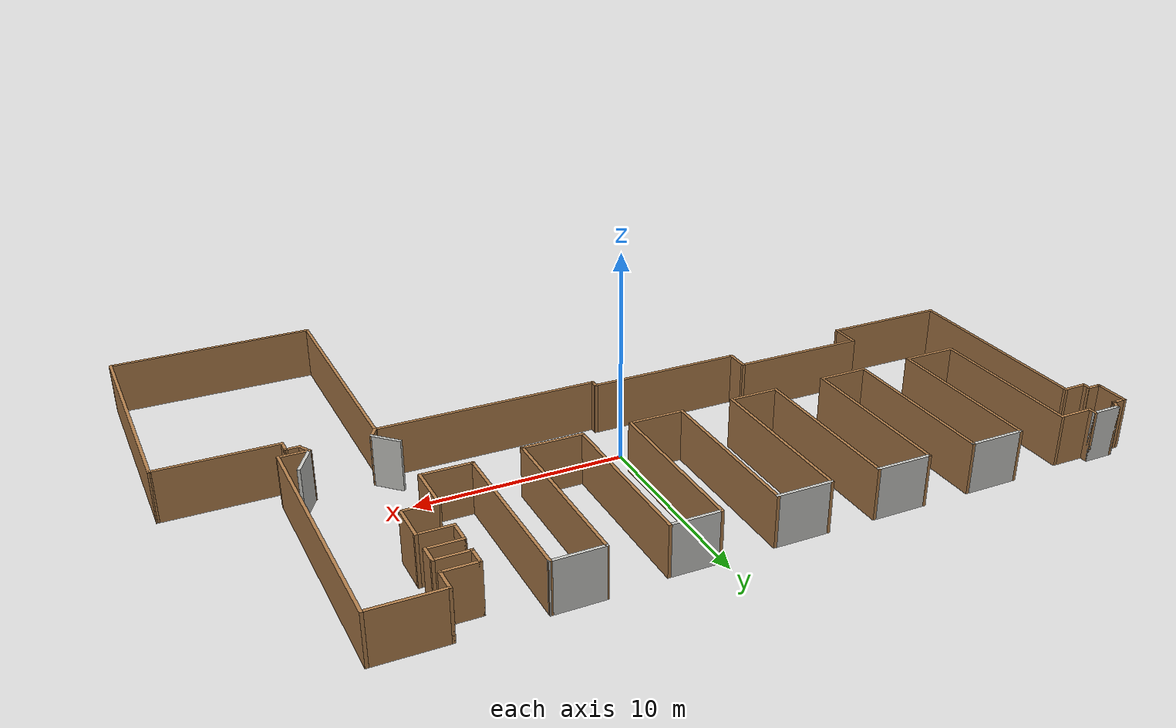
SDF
<?xml version='1.0'?>
<sdf version='1.6'>
  <model name='ecst_v2'>
    <pose frame=''>-0.546253 -2.48156 0 0 -0 0</pose>
    <link name='Wall_100'>
      <collision name='Wall_100_Collision'>
        <geometry>
          <box>
            <size>1 0.15 2.5</size>
          </box>
        </geometry>
        <pose frame=''>0 0 1.25 0 -0 0</pose>
      </collision>
      <visual name='Wall_100_Visual'>
        <pose frame=''>0 0 1.25 0 -0 0</pose>
        <geometry>
          <box>
            <size>1 0.15 2.5</size>
          </box>
        </geometry>
        <material>
          <script>
            <uri>file://media/materials/scripts/gazebo.material</uri>
            <name>Gazebo/Wood</name>
          </script>
          <ambient>1 1 1 1</ambient>
        </material>
        <meta>
          <layer>0</layer>
        </meta>
      </visual>
      <pose frame=''>10.625 10.6345 0 0 -0 1.5708</pose>
    </link>
    <link name='Wall_101'>
      <collision name='Wall_101_Collision'>
        <geometry>
          <box>
            <size>1.75 0.15 2.5</size>
          </box>
        </geometry>
        <pose frame=''>0 0 1.25 0 -0 0</pose>
      </collision>
      <visual name='Wall_101_Visual'>
        <pose frame=''>0 0 1.25 0 -0 0</pose>
        <geometry>
          <box>
            <size>1.75 0.15 2.5</size>
          </box>
        </geometry>
        <material>
          <script>
            <uri>file://media/materials/scripts/gazebo.material</uri>
            <name>Gazebo/Wood</name>
          </script>
          <ambient>1 1 1 1</ambient>
        </material>
        <meta>
          <layer>0</layer>
        </meta>
      </visual>
      <pose frame=''>11.425 11.0595 0 0 -0 0</pose>
    </link>
    <link name='Wall_102'>
      <collision name='Wall_102_Collision'>
        <geometry>
          <box>
            <size>1.25 0.15 2.5</size>
          </box>
        </geometry>
        <pose frame=''>0 0 1.25 0 -0 0</pose>
      </collision>
      <visual name='Wall_102_Visual'>
        <pose frame=''>0 0 1.25 0 -0 0</pose>
        <geometry>
          <box>
            <size>1.25 0.15 2.5</size>
          </box>
        </geometry>
        <material>
          <script>
            <uri>file://media/materials/scripts/gazebo.material</uri>
            <name>Gazebo/Wood</name>
          </script>
          <ambient>1 1 1 1</ambient>
        </material>
        <meta>
          <layer>0</layer>
        </meta>
      </visual>
      <pose frame=''>12.225 11.6095 0 0 -0 1.5708</pose>
    </link>
    <link name='Wall_103'>
      <collision name='Wall_103_Collision'>
        <geometry>
          <box>
            <size>3.5 0.15 2.5</size>
          </box>
        </geometry>
        <pose frame=''>0 0 1.25 0 -0 0</pose>
      </collision>
      <visual name='Wall_103_Visual'>
        <pose frame=''>0 0 1.25 0 -0 0</pose>
        <geometry>
          <box>
            <size>3.5 0.15 2.5</size>
          </box>
        </geometry>
        <material>
          <script>
            <uri>file://media/materials/scripts/gazebo.material</uri>
            <name>Gazebo/Wood</name>
          </script>
          <ambient>1 1 1 1</ambient>
        </material>
        <meta>
          <layer>0</layer>
        </meta>
      </visual>
      <pose frame=''>13.9 12.1595 0 0 -0 0</pose>
    </link>
    <link name='Wall_104'>
      <collision name='Wall_104_Collision'>
        <geometry>
          <box>
            <size>12.25 0.15 2.5</size>
          </box>
        </geometry>
        <pose frame=''>0 0 1.25 0 -0 0</pose>
      </collision>
      <visual name='Wall_104_Visual'>
        <pose frame=''>0 0 1.25 0 -0 0</pose>
        <geometry>
          <box>
            <size>12.25 0.15 2.5</size>
          </box>
        </geometry>
        <material>
          <script>
            <uri>file://media/materials/scripts/gazebo.material</uri>
            <name>Gazebo/Wood</name>
          </script>
          <ambient>1 1 1 1</ambient>
        </material>
        <meta>
          <layer>0</layer>
        </meta>
      </visual>
      <pose frame=''>15.575 6.10955 0 0 -0 -1.5708</pose>
    </link>
    <link name='Wall_105'>
      <collision name='Wall_105_Collision'>
        <geometry>
          <box>
            <size>1.5 0.15 2.5</size>
          </box>
        </geometry>
        <pose frame=''>0 0 1.25 0 -0 0</pose>
      </collision>
      <visual name='Wall_105_Visual'>
        <pose frame=''>0 0 1.25 0 -0 0</pose>
        <geometry>
          <box>
            <size>1.5 0.15 2.5</size>
          </box>
        </geometry>
        <material>
          <script>
            <uri>file://media/materials/scripts/gazebo.material</uri>
            <name>Gazebo/Wood</name>
          </script>
          <ambient>1 1 1 1</ambient>
        </material>
        <meta>
          <layer>0</layer>
        </meta>
      </visual>
      <pose frame=''>14.9 0.059548 0 0 -0 3.14159</pose>
    </link>
    <link name='Wall_106'>
      <collision name='Wall_106_Collision'>
        <geometry>
          <box>
            <size>1.75 0.15 2.5</size>
          </box>
        </geometry>
        <pose frame=''>0 0 1.25 0 -0 0</pose>
      </collision>
      <visual name='Wall_106_Visual'>
        <pose frame=''>0 0 1.25 0 -0 0</pose>
        <geometry>
          <box>
            <size>1.75 0.15 2.5</size>
          </box>
        </geometry>
        <material>
          <script>
            <uri>file://media/materials/scripts/gazebo.material</uri>
            <name>Gazebo/CeilingTiled</name>
          </script>
          <ambient>1 1 1 1</ambient>
        </material>
        <meta>
          <layer>0</layer>
        </meta>
      </visual>
      <pose frame=''>14.625 0.752368 0 0 -0 1.0472</pose>
    </link>
    <link name='Wall_108'>
      <collision name='Wall_108_Collision'>
        <geometry>
          <box>
            <size>0.75 0.15 2.5</size>
          </box>
        </geometry>
        <pose frame=''>0 0 1.25 0 -0 0</pose>
      </collision>
      <visual name='Wall_108_Visual'>
        <pose frame=''>0 0 1.25 0 -0 0</pose>
        <geometry>
          <box>
            <size>0.75 0.15 2.5</size>
          </box>
        </geometry>
        <material>
          <script>
            <uri>file://media/materials/scripts/gazebo.material</uri>
            <name>Gazebo/Wood</name>
          </script>
          <ambient>1 1 1 1</ambient>
        </material>
        <meta>
          <layer>0</layer>
        </meta>
      </visual>
      <pose frame=''>14.375 -0.200259 0 0 -0 -1.0472</pose>
    </link>
    <link name='Wall_109'>
      <collision name='Wall_109_Collision'>
        <geometry>
          <box>
            <size>0.75 0.15 2.5</size>
          </box>
        </geometry>
        <pose frame=''>0 0 1.25 0 -0 0</pose>
      </collision>
      <visual name='Wall_109_Visual'>
        <pose frame=''>0 0 1.25 0 -0 0</pose>
        <geometry>
          <box>
            <size>0.75 0.15 2.5</size>
          </box>
        </geometry>
        <material>
          <script>
            <uri>file://media/materials/scripts/gazebo.material</uri>
            <name>Gazebo/Wood</name>
          </script>
          <ambient>1 1 1 1</ambient>
        </material>
        <meta>
          <layer>0</layer>
        </meta>
      </visual>
      <pose frame=''>14.825 -0.460067 0 0 -0 0</pose>
    </link>
    <link name='Wall_110'>
      <collision name='Wall_110_Collision'>
        <geometry>
          <box>
            <size>0.75 0.15 2.5</size>
          </box>
        </geometry>
        <pose frame=''>0 0 1.25 0 -0 0</pose>
      </collision>
      <visual name='Wall_110_Visual'>
        <pose frame=''>0 0 1.25 0 -0 0</pose>
        <geometry>
          <box>
            <size>0.75 0.15 2.5</size>
          </box>
        </geometry>
        <material>
          <script>
            <uri>file://media/materials/scripts/gazebo.material</uri>
            <name>Gazebo/Wood</name>
          </script>
          <ambient>1 1 1 1</ambient>
        </material>
        <meta>
          <layer>0</layer>
        </meta>
      </visual>
      <pose frame=''>15.125 -0.760067 0 0 -0 -1.5708</pose>
    </link>
    <link name='Wall_111'>
      <collision name='Wall_111_Collision'>
        <geometry>
          <box>
            <size>5.75 0.15 2.5</size>
          </box>
        </geometry>
        <pose frame=''>0 0 1.25 0 -0 0</pose>
      </collision>
      <visual name='Wall_111_Visual'>
        <pose frame=''>0 0 1.25 0 -0 0</pose>
        <geometry>
          <box>
            <size>5.75 0.15 2.5</size>
          </box>
        </geometry>
        <material>
          <script>
            <uri>file://media/materials/scripts/gazebo.material</uri>
            <name>Gazebo/Wood</name>
          </script>
          <ambient>1 1 1 1</ambient>
        </material>
        <meta>
          <layer>0</layer>
        </meta>
      </visual>
      <pose frame=''>17.925 -1.06007 0 0 -0 0</pose>
    </link>
    <link name='Wall_112'>
      <collision name='Wall_112_Collision'>
        <geometry>
          <box>
            <size>11.25 0.15 2.5</size>
          </box>
        </geometry>
        <pose frame=''>0 0 1.25 0 -0 0</pose>
      </collision>
      <visual name='Wall_112_Visual'>
        <pose frame=''>0 0 1.25 0 -0 0</pose>
        <geometry>
          <box>
            <size>11.25 0.15 2.5</size>
          </box>
        </geometry>
        <material>
          <script>
            <uri>file://media/materials/scripts/gazebo.material</uri>
            <name>Gazebo/Wood</name>
          </script>
          <ambient>1 1 1 1</ambient>
        </material>
        <meta>
          <layer>0</layer>
        </meta>
      </visual>
      <pose frame=''>20.725 -6.61007 0 0 -0 -1.5708</pose>
    </link>
    <link name='Wall_113'>
      <collision name='Wall_113_Collision'>
        <geometry>
          <box>
            <size>9.75 0.15 2.5</size>
          </box>
        </geometry>
        <pose frame=''>0 0 1.25 0 -0 0</pose>
      </collision>
      <visual name='Wall_113_Visual'>
        <pose frame=''>0 0 1.25 0 -0 0</pose>
        <geometry>
          <box>
            <size>9.75 0.15 2.5</size>
          </box>
        </geometry>
        <material>
          <script>
            <uri>file://media/materials/scripts/gazebo.material</uri>
            <name>Gazebo/Wood</name>
          </script>
          <ambient>1 1 1 1</ambient>
        </material>
        <meta>
          <layer>0</layer>
        </meta>
      </visual>
      <pose frame=''>15.925 -12.1601 0 0 -0 3.14159</pose>
    </link>
    <link name='Wall_114'>
      <collision name='Wall_114_Collision'>
        <geometry>
          <box>
            <size>11.75 0.15 2.5</size>
          </box>
        </geometry>
        <pose frame=''>0 0 1.25 0 -0 0</pose>
      </collision>
      <visual name='Wall_114_Visual'>
        <pose frame=''>0 0 1.25 0 -0 0</pose>
        <geometry>
          <box>
            <size>11.75 0.15 2.5</size>
          </box>
        </geometry>
        <material>
          <script>
            <uri>file://media/materials/scripts/gazebo.material</uri>
            <name>Gazebo/Wood</name>
          </script>
          <ambient>1 1 1 1</ambient>
        </material>
        <meta>
          <layer>0</layer>
        </meta>
      </visual>
      <pose frame=''>11.125 -6.36007 0 0 -0 1.5708</pose>
    </link>
    <link name='Wall_115'>
      <collision name='Wall_115_Collision'>
        <geometry>
          <box>
            <size>10.75 0.15 2.5</size>
          </box>
        </geometry>
        <pose frame=''>0 0 1.25 0 -0 0</pose>
      </collision>
      <visual name='Wall_115_Visual'>
        <pose frame=''>0 0 1.25 0 -0 0</pose>
        <geometry>
          <box>
            <size>10.75 0.15 2.5</size>
          </box>
        </geometry>
        <material>
          <script>
            <uri>file://media/materials/scripts/gazebo.material</uri>
            <name>Gazebo/Wood</name>
          </script>
          <ambient>1 1 1 1</ambient>
        </material>
        <meta>
          <layer>0</layer>
        </meta>
      </visual>
      <pose frame=''>5.825 -0.560067 0 0 -0 3.14159</pose>
    </link>
    <link name='Wall_116'>
      <collision name='Wall_116_Collision'>
        <geometry>
          <box>
            <size>0.5 0.15 2.5</size>
          </box>
        </geometry>
        <pose frame=''>0 0 1.25 0 -0 0</pose>
      </collision>
      <visual name='Wall_116_Visual'>
        <pose frame=''>0 0 1.25 0 -0 0</pose>
        <geometry>
          <box>
            <size>0.5 0.15 2.5</size>
          </box>
        </geometry>
        <material>
          <script>
            <uri>file://media/materials/scripts/gazebo.material</uri>
            <name>Gazebo/Wood</name>
          </script>
          <ambient>1 1 1 1</ambient>
        </material>
        <meta>
          <layer>0</layer>
        </meta>
      </visual>
      <pose frame=''>0.525 -0.385067 0 0 -0 1.5708</pose>
    </link>
    <link name='Wall_117'>
      <collision name='Wall_117_Collision'>
        <geometry>
          <box>
            <size>7.5 0.15 2.5</size>
          </box>
        </geometry>
        <pose frame=''>0 0 1.25 0 -0 0</pose>
      </collision>
      <visual name='Wall_117_Visual'>
        <pose frame=''>0 0 1.25 0 -0 0</pose>
        <geometry>
          <box>
            <size>7.5 0.15 2.5</size>
          </box>
        </geometry>
        <material>
          <script>
            <uri>file://media/materials/scripts/gazebo.material</uri>
            <name>Gazebo/Wood</name>
          </script>
          <ambient>1 1 1 1</ambient>
        </material>
        <meta>
          <layer>0</layer>
        </meta>
      </visual>
      <pose frame=''>-3.15 -0.210067 0 0 -0 3.14159</pose>
    </link>
    <link name='Wall_118'>
      <collision name='Wall_118_Collision'>
        <geometry>
          <box>
            <size>1.25 0.15 2.5</size>
          </box>
        </geometry>
        <pose frame=''>0 0 1.25 0 -0 0</pose>
      </collision>
      <visual name='Wall_118_Visual'>
        <pose frame=''>0 0 1.25 0 -0 0</pose>
        <geometry>
          <box>
            <size>1.25 0.15 2.5</size>
          </box>
        </geometry>
        <material>
          <script>
            <uri>file://media/materials/scripts/gazebo.material</uri>
            <name>Gazebo/Wood</name>
          </script>
          <ambient>1 1 1 1</ambient>
        </material>
        <meta>
          <layer>0</layer>
        </meta>
      </visual>
      <pose frame=''>-6.825 0.339933 0 0 -0 1.5708</pose>
    </link>
    <link name='Wall_119'>
      <collision name='Wall_119_Collision'>
        <geometry>
          <box>
            <size>6.5 0.15 2.5</size>
          </box>
        </geometry>
        <pose frame=''>0 0 1.25 0 -0 0</pose>
      </collision>
      <visual name='Wall_119_Visual'>
        <pose frame=''>0 0 1.25 0 -0 0</pose>
        <geometry>
          <box>
            <size>6.5 0.15 2.5</size>
          </box>
        </geometry>
        <material>
          <script>
            <uri>file://media/materials/scripts/gazebo.material</uri>
            <name>Gazebo/Wood</name>
          </script>
          <ambient>1 1 1 1</ambient>
        </material>
        <meta>
          <layer>0</layer>
        </meta>
      </visual>
      <pose frame=''>-10 0.889933 0 0 -0 3.14159</pose>
    </link>
    <link name='Wall_120'>
      <collision name='Wall_120_Collision'>
        <geometry>
          <box>
            <size>1.5 0.15 2.5</size>
          </box>
        </geometry>
        <pose frame=''>0 0 1.25 0 -0 0</pose>
      </collision>
      <visual name='Wall_120_Visual'>
        <pose frame=''>0 0 1.25 0 -0 0</pose>
        <geometry>
          <box>
            <size>1.5 0.15 2.5</size>
          </box>
        </geometry>
        <material>
          <script>
            <uri>file://media/materials/scripts/gazebo.material</uri>
            <name>Gazebo/Wood</name>
          </script>
          <ambient>1 1 1 1</ambient>
        </material>
        <meta>
          <layer>0</layer>
        </meta>
      </visual>
      <pose frame=''>-13.175 0.214933 0 0 -0 -1.5708</pose>
    </link>
    <link name='Wall_121'>
      <collision name='Wall_121_Collision'>
        <geometry>
          <box>
            <size>6 0.15 2.5</size>
          </box>
        </geometry>
        <pose frame=''>0 0 1.25 0 -0 0</pose>
      </collision>
      <visual name='Wall_121_Visual'>
        <pose frame=''>0 0 1.25 0 -0 0</pose>
        <geometry>
          <box>
            <size>6 0.15 2.5</size>
          </box>
        </geometry>
        <material>
          <script>
            <uri>file://media/materials/scripts/gazebo.material</uri>
            <name>Gazebo/Wood</name>
          </script>
          <ambient>1 1 1 1</ambient>
        </material>
        <meta>
          <layer>0</layer>
        </meta>
      </visual>
      <pose frame=''>-16.1 -0.460067 0 0 -0 3.14159</pose>
    </link>
    <link name='Wall_122'>
      <collision name='Wall_122_Collision'>
        <geometry>
          <box>
            <size>10.25 0.15 2.5</size>
          </box>
        </geometry>
        <pose frame=''>0 0 1.25 0 -0 0</pose>
      </collision>
      <visual name='Wall_122_Visual'>
        <pose frame=''>0 0 1.25 0 -0 0</pose>
        <geometry>
          <box>
            <size>10.25 0.15 2.5</size>
          </box>
        </geometry>
        <material>
          <script>
            <uri>file://media/materials/scripts/gazebo.material</uri>
            <name>Gazebo/Wood</name>
          </script>
          <ambient>1 1 1 1</ambient>
        </material>
        <meta>
          <layer>0</layer>
        </meta>
      </visual>
      <pose frame=''>-19.025 4.58993 0 0 -0 1.5708</pose>
    </link>
    <link name='Wall_123'>
      <collision name='Wall_123_Collision'>
        <geometry>
          <box>
            <size>1.25 0.15 2.5</size>
          </box>
        </geometry>
        <pose frame=''>0 0 1.25 0 -0 0</pose>
      </collision>
      <visual name='Wall_123_Visual'>
        <pose frame=''>0 0 1.25 0 -0 0</pose>
        <geometry>
          <box>
            <size>1.25 0.15 2.5</size>
          </box>
        </geometry>
        <material>
          <script>
            <uri>file://media/materials/scripts/gazebo.material</uri>
            <name>Gazebo/Wood</name>
          </script>
          <ambient>1 1 1 1</ambient>
        </material>
        <meta>
          <layer>0</layer>
        </meta>
      </visual>
      <pose frame=''>-19.575 9.63993 0 0 -0 3.14159</pose>
    </link>
    <link name='Wall_124'>
      <collision name='Wall_124_Collision'>
        <geometry>
          <box>
            <size>0.5 0.15 2.5</size>
          </box>
        </geometry>
        <pose frame=''>0 0 1.25 0 -0 0</pose>
      </collision>
      <visual name='Wall_124_Visual'>
        <pose frame=''>0 0 1.25 0 -0 0</pose>
        <geometry>
          <box>
            <size>0.5 0.15 2.5</size>
          </box>
        </geometry>
        <material>
          <script>
            <uri>file://media/materials/scripts/gazebo.material</uri>
            <name>Gazebo/Wood</name>
          </script>
          <ambient>1 1 1 1</ambient>
        </material>
        <meta>
          <layer>0</layer>
        </meta>
      </visual>
      <pose frame=''>-20.125 9.81493 0 0 -0 1.5708</pose>
    </link>
    <link name='Wall_125'>
      <collision name='Wall_125_Collision'>
        <geometry>
          <box>
            <size>0.75 0.15 2.5</size>
          </box>
        </geometry>
        <pose frame=''>0 0 1.25 0 -0 0</pose>
      </collision>
      <visual name='Wall_125_Visual'>
        <pose frame=''>0 0 1.25 0 -0 0</pose>
        <geometry>
          <box>
            <size>0.75 0.15 2.5</size>
          </box>
        </geometry>
        <material>
          <script>
            <uri>file://media/materials/scripts/gazebo.material</uri>
            <name>Gazebo/Wood</name>
          </script>
          <ambient>1 1 1 1</ambient>
        </material>
        <meta>
          <layer>0</layer>
        </meta>
      </visual>
      <pose frame=''>-20.425 9.98993 0 0 -0 3.14159</pose>
    </link>
    <link name='Wall_126'>
      <collision name='Wall_126_Collision'>
        <geometry>
          <box>
            <size>1.75 0.15 2.5</size>
          </box>
        </geometry>
        <pose frame=''>0 0 1.25 0 -0 0</pose>
      </collision>
      <visual name='Wall_126_Visual'>
        <pose frame=''>0 0 1.25 0 -0 0</pose>
        <geometry>
          <box>
            <size>1.75 0.15 2.5</size>
          </box>
        </geometry>
        <material>
          <script>
            <uri>file://media/materials/scripts/gazebo.material</uri>
            <name>Gazebo/Wood</name>
          </script>
          <ambient>1 1 1 1</ambient>
        </material>
        <meta>
          <layer>0</layer>
        </meta>
      </visual>
      <pose frame=''>-20.725 10.7899 0 0 -0 1.5708</pose>
    </link>
    <link name='Wall_127'>
      <collision name='Wall_127_Collision'>
        <geometry>
          <box>
            <size>0.75 0.15 2.5</size>
          </box>
        </geometry>
        <pose frame=''>0 0 1.25 0 -0 0</pose>
      </collision>
      <visual name='Wall_127_Visual'>
        <pose frame=''>0 0 1.25 0 -0 0</pose>
        <geometry>
          <box>
            <size>0.75 0.15 2.5</size>
          </box>
        </geometry>
        <material>
          <script>
            <uri>file://media/materials/scripts/gazebo.material</uri>
            <name>Gazebo/Wood</name>
          </script>
          <ambient>1 1 1 1</ambient>
        </material>
        <meta>
          <layer>0</layer>
        </meta>
      </visual>
      <pose frame=''>-20.425 11.5899 0 0 -0 0</pose>
    </link>
    <link name='Wall_128'>
      <collision name='Wall_128_Collision'>
        <geometry>
          <box>
            <size>0.5 0.15 2.5</size>
          </box>
        </geometry>
        <pose frame=''>0 0 1.25 0 -0 0</pose>
      </collision>
      <visual name='Wall_128_Visual'>
        <pose frame=''>0 0 1.25 0 -0 0</pose>
        <geometry>
          <box>
            <size>0.5 0.15 2.5</size>
          </box>
        </geometry>
        <material>
          <script>
            <uri>file://media/materials/scripts/gazebo.material</uri>
            <name>Gazebo/Wood</name>
          </script>
          <ambient>1 1 1 1</ambient>
        </material>
        <meta>
          <layer>0</layer>
        </meta>
      </visual>
      <pose frame=''>-20.0375 11.7415 0 0 -0 1.0472</pose>
    </link>
    <link name='Wall_129'>
      <collision name='Wall_129_Collision'>
        <geometry>
          <box>
            <size>0.25 0.15 2.5</size>
          </box>
        </geometry>
        <pose frame=''>0 0 1.25 0 -0 0</pose>
      </collision>
      <visual name='Wall_129_Visual'>
        <pose frame=''>0 0 1.25 0 -0 0</pose>
        <geometry>
          <box>
            <size>0.25 0.15 2.5</size>
          </box>
        </geometry>
        <material>
          <script>
            <uri>file://media/materials/scripts/gazebo.material</uri>
            <name>Gazebo/Wood</name>
          </script>
          <ambient>1 1 1 1</ambient>
        </material>
        <meta>
          <layer>0</layer>
        </meta>
      </visual>
      <pose frame=''>-19.95 11.943 0 0 -0 1.5708</pose>
    </link>
    <link name='Wall_130'>
      <collision name='Wall_130_Collision'>
        <geometry>
          <box>
            <size>1.5 0.15 2.5</size>
          </box>
        </geometry>
        <pose frame=''>0 0 1.25 0 -0 0</pose>
      </collision>
      <visual name='Wall_130_Visual'>
        <pose frame=''>0 0 1.25 0 -0 0</pose>
        <geometry>
          <box>
            <size>1.5 0.15 2.5</size>
          </box>
        </geometry>
        <material>
          <script>
            <uri>file://media/materials/scripts/gazebo.material</uri>
            <name>Gazebo/CeilingTiled</name>
          </script>
          <ambient>1 1 1 1</ambient>
        </material>
        <meta>
          <layer>0</layer>
        </meta>
      </visual>
      <pose frame=''>-19.275 11.993 0 0 -0 0</pose>
    </link>
    <link name='Wall_131'>
      <collision name='Wall_131_Collision'>
        <geometry>
          <box>
            <size>0.5 0.15 2.5</size>
          </box>
        </geometry>
        <pose frame=''>0 0 1.25 0 -0 0</pose>
      </collision>
      <visual name='Wall_131_Visual'>
        <pose frame=''>0 0 1.25 0 -0 0</pose>
        <geometry>
          <box>
            <size>0.5 0.15 2.5</size>
          </box>
        </geometry>
        <material>
          <script>
            <uri>file://media/materials/scripts/gazebo.material</uri>
            <name>Gazebo/Wood</name>
          </script>
          <ambient>1 1 1 1</ambient>
        </material>
        <meta>
          <layer>0</layer>
        </meta>
      </visual>
      <pose frame=''>-18.6 11.818 0 0 -0 -1.5708</pose>
    </link>
    <link name='Wall_132'>
      <collision name='Wall_132_Collision'>
        <geometry>
          <box>
            <size>1.75 0.15 2.5</size>
          </box>
        </geometry>
        <pose frame=''>0 0 1.25 0 -0 0</pose>
      </collision>
      <visual name='Wall_132_Visual'>
        <pose frame=''>0 0 1.25 0 -0 0</pose>
        <geometry>
          <box>
            <size>1.75 0.15 2.5</size>
          </box>
        </geometry>
        <material>
          <script>
            <uri>file://media/materials/scripts/gazebo.material</uri>
            <name>Gazebo/Wood</name>
          </script>
          <ambient>1 1 1 1</ambient>
        </material>
        <meta>
          <layer>0</layer>
        </meta>
      </visual>
      <pose frame=''>-17.8 11.643 0 0 -0 0</pose>
    </link>
    <link name='Wall_133'>
      <collision name='Wall_133_Collision'>
        <geometry>
          <box>
            <size>8 0.15 2.5</size>
          </box>
        </geometry>
        <pose frame=''>0 0 1.25 0 -0 0</pose>
      </collision>
      <visual name='Wall_133_Visual'>
        <pose frame=''>0 0 1.25 0 -0 0</pose>
        <geometry>
          <box>
            <size>8 0.15 2.5</size>
          </box>
        </geometry>
        <material>
          <script>
            <uri>file://media/materials/scripts/gazebo.material</uri>
            <name>Gazebo/Wood</name>
          </script>
          <ambient>1 1 1 1</ambient>
        </material>
        <meta>
          <layer>0</layer>
        </meta>
      </visual>
      <pose frame=''>-17 7.71804 0 0 -0 -1.5708</pose>
    </link>
    <link name='Wall_134'>
      <collision name='Wall_134_Collision'>
        <geometry>
          <box>
            <size>2.75 0.15 2.5</size>
          </box>
        </geometry>
        <pose frame=''>0 0 1.25 0 -0 0</pose>
      </collision>
      <visual name='Wall_134_Visual'>
        <pose frame=''>0 0 1.25 0 -0 0</pose>
        <geometry>
          <box>
            <size>2.75 0.15 2.5</size>
          </box>
        </geometry>
        <material>
          <script>
            <uri>file://media/materials/scripts/gazebo.material</uri>
            <name>Gazebo/Wood</name>
          </script>
          <ambient>1 1 1 1</ambient>
        </material>
        <meta>
          <layer>0</layer>
        </meta>
      </visual>
      <pose frame=''>-15.7 3.79304 0 0 -0 0</pose>
    </link>
    <link name='Wall_135'>
      <collision name='Wall_135_Collision'>
        <geometry>
          <box>
            <size>8.25 0.15 2.5</size>
          </box>
        </geometry>
        <pose frame=''>0 0 1.25 0 -0 0</pose>
      </collision>
      <visual name='Wall_135_Visual'>
        <pose frame=''>0 0 1.25 0 -0 0</pose>
        <geometry>
          <box>
            <size>8.25 0.15 2.5</size>
          </box>
        </geometry>
        <material>
          <script>
            <uri>file://media/materials/scripts/gazebo.material</uri>
            <name>Gazebo/Wood</name>
          </script>
          <ambient>1 1 1 1</ambient>
        </material>
        <meta>
          <layer>0</layer>
        </meta>
      </visual>
      <pose frame=''>-14.4 7.84304 0 0 -0 1.5708</pose>
    </link>
    <link name='Wall_136'>
      <collision name='Wall_136_Collision'>
        <geometry>
          <box>
            <size>2.75 0.15 2.5</size>
          </box>
        </geometry>
        <pose frame=''>0 0 1.25 0 -0 0</pose>
      </collision>
      <visual name='Wall_136_Visual'>
        <pose frame=''>0 0 1.25 0 -0 0</pose>
        <geometry>
          <box>
            <size>2.75 0.15 2.5</size>
          </box>
        </geometry>
        <material>
          <script>
            <uri>file://media/materials/scripts/gazebo.material</uri>
            <name>Gazebo/CeilingTiled</name>
          </script>
          <ambient>1 1 1 1</ambient>
        </material>
        <meta>
          <layer>0</layer>
        </meta>
      </visual>
      <pose frame=''>-13.1 11.893 0 0 -0 0</pose>
    </link>
    <link name='Wall_137'>
      <collision name='Wall_137_Collision'>
        <geometry>
          <box>
            <size>8.25 0.15 2.5</size>
          </box>
        </geometry>
        <pose frame=''>0 0 1.25 0 -0 0</pose>
      </collision>
      <visual name='Wall_137_Visual'>
        <pose frame=''>0 0 1.25 0 -0 0</pose>
        <geometry>
          <box>
            <size>8.25 0.15 2.5</size>
          </box>
        </geometry>
        <material>
          <script>
            <uri>file://media/materials/scripts/gazebo.material</uri>
            <name>Gazebo/Wood</name>
          </script>
          <ambient>1 1 1 1</ambient>
        </material>
        <meta>
          <layer>0</layer>
        </meta>
      </visual>
      <pose frame=''>-11.8 7.84304 0 0 -0 -1.5708</pose>
    </link>
    <link name='Wall_138'>
      <collision name='Wall_138_Collision'>
        <geometry>
          <box>
            <size>2.5 0.15 2.5</size>
          </box>
        </geometry>
        <pose frame=''>0 0 1.25 0 -0 0</pose>
      </collision>
      <visual name='Wall_138_Visual'>
        <pose frame=''>0 0 1.25 0 -0 0</pose>
        <geometry>
          <box>
            <size>2.5 0.15 2.5</size>
          </box>
        </geometry>
        <material>
          <script>
            <uri>file://media/materials/scripts/gazebo.material</uri>
            <name>Gazebo/Wood</name>
          </script>
          <ambient>1 1 1 1</ambient>
        </material>
        <meta>
          <layer>0</layer>
        </meta>
      </visual>
      <pose frame=''>-10.625 3.79304 0 0 -0 0</pose>
    </link>
    <link name='Wall_139'>
      <collision name='Wall_139_Collision'>
        <geometry>
          <box>
            <size>8.25 0.15 2.5</size>
          </box>
        </geometry>
        <pose frame=''>0 0 1.25 0 -0 0</pose>
      </collision>
      <visual name='Wall_139_Visual'>
        <pose frame=''>0 0 1.25 0 -0 0</pose>
        <geometry>
          <box>
            <size>8.25 0.15 2.5</size>
          </box>
        </geometry>
        <material>
          <script>
            <uri>file://media/materials/scripts/gazebo.material</uri>
            <name>Gazebo/Wood</name>
          </script>
          <ambient>1 1 1 1</ambient>
        </material>
        <meta>
          <layer>0</layer>
        </meta>
      </visual>
      <pose frame=''>-9.45 7.84304 0 0 -0 1.5708</pose>
    </link>
    <link name='Wall_140'>
      <collision name='Wall_140_Collision'>
        <geometry>
          <box>
            <size>2.75 0.15 2.5</size>
          </box>
        </geometry>
        <pose frame=''>0 0 1.25 0 -0 0</pose>
      </collision>
      <visual name='Wall_140_Visual'>
        <pose frame=''>0 0 1.25 0 -0 0</pose>
        <geometry>
          <box>
            <size>2.75 0.15 2.5</size>
          </box>
        </geometry>
        <material>
          <script>
            <uri>file://media/materials/scripts/gazebo.material</uri>
            <name>Gazebo/CeilingTiled</name>
          </script>
          <ambient>1 1 1 1</ambient>
        </material>
        <meta>
          <layer>0</layer>
        </meta>
      </visual>
      <pose frame=''>-8.15 11.893 0 0 -0 0</pose>
    </link>
    <link name='Wall_141'>
      <collision name='Wall_141_Collision'>
        <geometry>
          <box>
            <size>8.25 0.15 2.5</size>
          </box>
        </geometry>
        <pose frame=''>0 0 1.25 0 -0 0</pose>
      </collision>
      <visual name='Wall_141_Visual'>
        <pose frame=''>0 0 1.25 0 -0 0</pose>
        <geometry>
          <box>
            <size>8.25 0.15 2.5</size>
          </box>
        </geometry>
        <material>
          <script>
            <uri>file://media/materials/scripts/gazebo.material</uri>
            <name>Gazebo/Wood</name>
          </script>
          <ambient>1 1 1 1</ambient>
        </material>
        <meta>
          <layer>0</layer>
        </meta>
      </visual>
      <pose frame=''>-6.85 7.84304 0 0 -0 -1.5708</pose>
    </link>
    <link name='Wall_142'>
      <collision name='Wall_142_Collision'>
        <geometry>
          <box>
            <size>2.5 0.15 2.5</size>
          </box>
        </geometry>
        <pose frame=''>0 0 1.25 0 -0 0</pose>
      </collision>
      <visual name='Wall_142_Visual'>
        <pose frame=''>0 0 1.25 0 -0 0</pose>
        <geometry>
          <box>
            <size>2.5 0.15 2.5</size>
          </box>
        </geometry>
        <material>
          <script>
            <uri>file://media/materials/scripts/gazebo.material</uri>
            <name>Gazebo/Wood</name>
          </script>
          <ambient>1 1 1 1</ambient>
        </material>
        <meta>
          <layer>0</layer>
        </meta>
      </visual>
      <pose frame=''>-5.675 3.79304 0 0 -0 0</pose>
    </link>
    <link name='Wall_143'>
      <collision name='Wall_143_Collision'>
        <geometry>
          <box>
            <size>8.25 0.15 2.5</size>
          </box>
        </geometry>
        <pose frame=''>0 0 1.25 0 -0 0</pose>
      </collision>
      <visual name='Wall_143_Visual'>
        <pose frame=''>0 0 1.25 0 -0 0</pose>
        <geometry>
          <box>
            <size>8.25 0.15 2.5</size>
          </box>
        </geometry>
        <material>
          <script>
            <uri>file://media/materials/scripts/gazebo.material</uri>
            <name>Gazebo/Wood</name>
          </script>
          <ambient>1 1 1 1</ambient>
        </material>
        <meta>
          <layer>0</layer>
        </meta>
      </visual>
      <pose frame=''>-4.5 7.84304 0 0 -0 1.5708</pose>
    </link>
    <link name='Wall_144'>
      <collision name='Wall_144_Collision'>
        <geometry>
          <box>
            <size>2.75 0.15 2.5</size>
          </box>
        </geometry>
        <pose frame=''>0 0 1.25 0 -0 0</pose>
      </collision>
      <visual name='Wall_144_Visual'>
        <pose frame=''>0 0 1.25 0 -0 0</pose>
        <geometry>
          <box>
            <size>2.75 0.15 2.5</size>
          </box>
        </geometry>
        <material>
          <script>
            <uri>file://media/materials/scripts/gazebo.material</uri>
            <name>Gazebo/CeilingTiled</name>
          </script>
          <ambient>1 1 1 1</ambient>
        </material>
        <meta>
          <layer>0</layer>
        </meta>
      </visual>
      <pose frame=''>-3.2 11.893 0 0 -0 0</pose>
    </link>
    <link name='Wall_145'>
      <collision name='Wall_145_Collision'>
        <geometry>
          <box>
            <size>8.25 0.15 2.5</size>
          </box>
        </geometry>
        <pose frame=''>0 0 1.25 0 -0 0</pose>
      </collision>
      <visual name='Wall_145_Visual'>
        <pose frame=''>0 0 1.25 0 -0 0</pose>
        <geometry>
          <box>
            <size>8.25 0.15 2.5</size>
          </box>
        </geometry>
        <material>
          <script>
            <uri>file://media/materials/scripts/gazebo.material</uri>
            <name>Gazebo/Wood</name>
          </script>
          <ambient>1 1 1 1</ambient>
        </material>
        <meta>
          <layer>0</layer>
        </meta>
      </visual>
      <pose frame=''>-1.9 7.84304 0 0 -0 -1.5708</pose>
    </link>
    <link name='Wall_146'>
      <collision name='Wall_146_Collision'>
        <geometry>
          <box>
            <size>2.75 0.15 2.5</size>
          </box>
        </geometry>
        <pose frame=''>0 0 1.25 0 -0 0</pose>
      </collision>
      <visual name='Wall_146_Visual'>
        <pose frame=''>0 0 1.25 0 -0 0</pose>
        <geometry>
          <box>
            <size>2.75 0.15 2.5</size>
          </box>
        </geometry>
        <material>
          <script>
            <uri>file://media/materials/scripts/gazebo.material</uri>
            <name>Gazebo/Wood</name>
          </script>
          <ambient>1 1 1 1</ambient>
        </material>
        <meta>
          <layer>0</layer>
        </meta>
      </visual>
      <pose frame=''>-0.6 3.79304 0 0 -0 0</pose>
    </link>
    <link name='Wall_147'>
      <collision name='Wall_147_Collision'>
        <geometry>
          <box>
            <size>8.25 0.15 2.5</size>
          </box>
        </geometry>
        <pose frame=''>0 0 1.25 0 -0 0</pose>
      </collision>
      <visual name='Wall_147_Visual'>
        <pose frame=''>0 0 1.25 0 -0 0</pose>
        <geometry>
          <box>
            <size>8.25 0.15 2.5</size>
          </box>
        </geometry>
        <material>
          <script>
            <uri>file://media/materials/scripts/gazebo.material</uri>
            <name>Gazebo/Wood</name>
          </script>
          <ambient>1 1 1 1</ambient>
        </material>
        <meta>
          <layer>0</layer>
        </meta>
      </visual>
      <pose frame=''>0.7 7.84304 0 0 -0 1.5708</pose>
    </link>
    <link name='Wall_148'>
      <collision name='Wall_148_Collision'>
        <geometry>
          <box>
            <size>2.5 0.15 2.5</size>
          </box>
        </geometry>
        <pose frame=''>0 0 1.25 0 -0 0</pose>
      </collision>
      <visual name='Wall_148_Visual'>
        <pose frame=''>0 0 1.25 0 -0 0</pose>
        <geometry>
          <box>
            <size>2.5 0.15 2.5</size>
          </box>
        </geometry>
        <material>
          <script>
            <uri>file://media/materials/scripts/gazebo.material</uri>
            <name>Gazebo/CeilingTiled</name>
          </script>
          <ambient>1 1 1 1</ambient>
        </material>
        <meta>
          <layer>0</layer>
        </meta>
      </visual>
      <pose frame=''>1.875 11.893 0 0 -0 0</pose>
    </link>
    <link name='Wall_149'>
      <collision name='Wall_149_Collision'>
        <geometry>
          <box>
            <size>8.25 0.15 2.5</size>
          </box>
        </geometry>
        <pose frame=''>0 0 1.25 0 -0 0</pose>
      </collision>
      <visual name='Wall_149_Visual'>
        <pose frame=''>0 0 1.25 0 -0 0</pose>
        <geometry>
          <box>
            <size>8.25 0.15 2.5</size>
          </box>
        </geometry>
        <material>
          <script>
            <uri>file://media/materials/scripts/gazebo.material</uri>
            <name>Gazebo/Wood</name>
          </script>
          <ambient>1 1 1 1</ambient>
        </material>
        <meta>
          <layer>0</layer>
        </meta>
      </visual>
      <pose frame=''>3.05 7.84304 0 0 -0 -1.5708</pose>
    </link>
    <link name='Wall_150'>
      <collision name='Wall_150_Collision'>
        <geometry>
          <box>
            <size>3 0.15 2.5</size>
          </box>
        </geometry>
        <pose frame=''>0 0 1.25 0 -0 0</pose>
      </collision>
      <visual name='Wall_150_Visual'>
        <pose frame=''>0 0 1.25 0 -0 0</pose>
        <geometry>
          <box>
            <size>3 0.15 2.5</size>
          </box>
        </geometry>
        <material>
          <script>
            <uri>file://media/materials/scripts/gazebo.material</uri>
            <name>Gazebo/Wood</name>
          </script>
          <ambient>1 1 1 1</ambient>
        </material>
        <meta>
          <layer>0</layer>
        </meta>
      </visual>
      <pose frame=''>4.475 3.79304 0 0 -0 0</pose>
    </link>
    <link name='Wall_151'>
      <collision name='Wall_151_Collision'>
        <geometry>
          <box>
            <size>8.5 0.15 2.5</size>
          </box>
        </geometry>
        <pose frame=''>0 0 1.25 0 -0 0</pose>
      </collision>
      <visual name='Wall_151_Visual'>
        <pose frame=''>0 0 1.25 0 -0 0</pose>
        <geometry>
          <box>
            <size>8.5 0.15 2.5</size>
          </box>
        </geometry>
        <material>
          <script>
            <uri>file://media/materials/scripts/gazebo.material</uri>
            <name>Gazebo/Wood</name>
          </script>
          <ambient>1 1 1 1</ambient>
        </material>
        <meta>
          <layer>0</layer>
        </meta>
      </visual>
      <pose frame=''>5.9 7.96804 0 0 -0 1.5708</pose>
    </link>
    <link name='Wall_152'>
      <collision name='Wall_152_Collision'>
        <geometry>
          <box>
            <size>2.52506 0.15 2.5</size>
          </box>
        </geometry>
        <pose frame=''>0 0 1.25 0 -0 0</pose>
      </collision>
      <visual name='Wall_152_Visual'>
        <pose frame=''>0 0 1.25 0 -0 0</pose>
        <geometry>
          <box>
            <size>2.52506 0.15 2.5</size>
          </box>
        </geometry>
        <material>
          <script>
            <uri>file://media/materials/scripts/gazebo.material</uri>
            <name>Gazebo/CeilingTiled</name>
          </script>
          <ambient>1 1 1 1</ambient>
        </material>
        <meta>
          <layer>0</layer>
        </meta>
      </visual>
      <pose frame=''>7.0875 12.1513 0 0 -0 0.00695</pose>
    </link>
    <link name='Wall_153'>
      <collision name='Wall_153_Collision'>
        <geometry>
          <box>
            <size>8.25 0.15 2.5</size>
          </box>
        </geometry>
        <pose frame=''>0 0 1.25 0 -0 0</pose>
      </collision>
      <visual name='Wall_153_Visual'>
        <pose frame=''>0 0 1.25 0 -0 0</pose>
        <geometry>
          <box>
            <size>8.25 0.15 2.5</size>
          </box>
        </geometry>
        <material>
          <script>
            <uri>file://media/materials/scripts/gazebo.material</uri>
            <name>Gazebo/Wood</name>
          </script>
          <ambient>1 1 1 1</ambient>
        </material>
        <meta>
          <layer>0</layer>
        </meta>
      </visual>
      <pose frame=''>8.275 8.10955 0 0 -0 -1.5708</pose>
    </link>
    <link name='Wall_155'>
      <collision name='Wall_155_Collision'>
        <geometry>
          <box>
            <size>0.75 0.15 2.5</size>
          </box>
        </geometry>
        <pose frame=''>0 0 1.25 0 -0 0</pose>
      </collision>
      <visual name='Wall_155_Visual'>
        <pose frame=''>0 0 1.25 0 -0 0</pose>
        <geometry>
          <box>
            <size>0.75 0.15 2.5</size>
          </box>
        </geometry>
        <material>
          <script>
            <uri>file://media/materials/scripts/gazebo.material</uri>
            <name>Gazebo/Wood</name>
          </script>
          <ambient>1 1 1 1</ambient>
        </material>
        <meta>
          <layer>0</layer>
        </meta>
      </visual>
      <pose frame=''>11.275 -0.30026 0 0 -0 1.0472</pose>
    </link>
    <link name='Wall_156'>
      <collision name='Wall_156_Collision'>
        <geometry>
          <box>
            <size>1.5 0.15 2.5</size>
          </box>
        </geometry>
        <pose frame=''>0 0 1.25 0 -0 0</pose>
      </collision>
      <visual name='Wall_156_Visual'>
        <pose frame=''>0 0 1.25 0 -0 0</pose>
        <geometry>
          <box>
            <size>1.5 0.15 2.5</size>
          </box>
        </geometry>
        <material>
          <script>
            <uri>file://media/materials/scripts/gazebo.material</uri>
            <name>Gazebo/CeilingTiled</name>
          </script>
          <ambient>1 1 1 1</ambient>
        </material>
        <meta>
          <layer>0</layer>
        </meta>
      </visual>
      <pose frame=''>10.9477 0.436845 0 0 -0 2.35619</pose>
    </link>
    <link name='Wall_90'>
      <collision name='Wall_90_Collision'>
        <geometry>
          <box>
            <size>8.25 0.15 2.5</size>
          </box>
        </geometry>
        <pose frame=''>0 0 1.25 0 -0 0</pose>
      </collision>
      <visual name='Wall_90_Visual'>
        <pose frame=''>0 0 1.25 0 -0 0</pose>
        <geometry>
          <box>
            <size>8.25 0.15 2.5</size>
          </box>
        </geometry>
        <material>
          <script>
            <uri>file://media/materials/scripts/gazebo.material</uri>
            <name>Gazebo/Grey</name>
          </script>
          <ambient>1 1 1 1</ambient>
        </material>
        <meta>
          <layer>0</layer>
        </meta>
      </visual>
      <pose frame=''>8.275 8.10955 0 0 -0 -1.5708</pose>
    </link>
    <link name='Wall_91'>
      <collision name='Wall_91_Collision'>
        <geometry>
          <box>
            <size>2.5 0.15 2.5</size>
          </box>
        </geometry>
        <pose frame=''>0 0 1.25 0 -0 0</pose>
      </collision>
      <visual name='Wall_91_Visual'>
        <pose frame=''>0 0 1.25 0 -0 0</pose>
        <geometry>
          <box>
            <size>2.5 0.15 2.5</size>
          </box>
        </geometry>
        <material>
          <script>
            <uri>file://media/materials/scripts/gazebo.material</uri>
            <name>Gazebo/Wood</name>
          </script>
          <ambient>1 1 1 1</ambient>
        </material>
        <meta>
          <layer>0</layer>
        </meta>
      </visual>
      <pose frame=''>9.45 4.05955 0 0 -0 0</pose>
    </link>
    <link name='Wall_92'>
      <collision name='Wall_92_Collision'>
        <geometry>
          <box>
            <size>2.5 0.15 2.5</size>
          </box>
        </geometry>
        <pose frame=''>0 0 1.25 0 -0 0</pose>
      </collision>
      <visual name='Wall_92_Visual'>
        <pose frame=''>0 0 1.25 0 -0 0</pose>
        <geometry>
          <box>
            <size>2.5 0.15 2.5</size>
          </box>
        </geometry>
        <material>
          <script>
            <uri>file://media/materials/scripts/gazebo.material</uri>
            <name>Gazebo/Wood</name>
          </script>
          <ambient>1 1 1 1</ambient>
        </material>
        <meta>
          <layer>0</layer>
        </meta>
      </visual>
      <pose frame=''>10.625 5.23455 0 0 -0 1.5708</pose>
    </link>
    <link name='Wall_93'>
      <collision name='Wall_93_Collision'>
        <geometry>
          <box>
            <size>1.75 0.15 2.5</size>
          </box>
        </geometry>
        <pose frame=''>0 0 1.25 0 -0 0</pose>
      </collision>
      <visual name='Wall_93_Visual'>
        <pose frame=''>0 0 1.25 0 -0 0</pose>
        <geometry>
          <box>
            <size>1.75 0.15 2.5</size>
          </box>
        </geometry>
        <material>
          <script>
            <uri>file://media/materials/scripts/gazebo.material</uri>
            <name>Gazebo/Wood</name>
          </script>
          <ambient>1 1 1 1</ambient>
        </material>
        <meta>
          <layer>0</layer>
        </meta>
      </visual>
      <pose frame=''>11.425 6.40955 0 0 -0 0</pose>
    </link>
    <link name='Wall_94'>
      <collision name='Wall_94_Collision'>
        <geometry>
          <box>
            <size>2 0.15 2.5</size>
          </box>
        </geometry>
        <pose frame=''>0 0 1.25 0 -0 0</pose>
      </collision>
      <visual name='Wall_94_Visual'>
        <pose frame=''>0 0 1.25 0 -0 0</pose>
        <geometry>
          <box>
            <size>2 0.15 2.5</size>
          </box>
        </geometry>
        <material>
          <script>
            <uri>file://media/materials/scripts/gazebo.material</uri>
            <name>Gazebo/Wood</name>
          </script>
          <ambient>1 1 1 1</ambient>
        </material>
        <meta>
          <layer>0</layer>
        </meta>
      </visual>
      <pose frame=''>12.225 7.33455 0 0 -0 1.5708</pose>
    </link>
    <link name='Wall_95'>
      <collision name='Wall_95_Collision'>
        <geometry>
          <box>
            <size>1.75 0.15 2.5</size>
          </box>
        </geometry>
        <pose frame=''>0 0 1.25 0 -0 0</pose>
      </collision>
      <visual name='Wall_95_Visual'>
        <pose frame=''>0 0 1.25 0 -0 0</pose>
        <geometry>
          <box>
            <size>1.75 0.15 2.5</size>
          </box>
        </geometry>
        <material>
          <script>
            <uri>file://media/materials/scripts/gazebo.material</uri>
            <name>Gazebo/Wood</name>
          </script>
          <ambient>1 1 1 1</ambient>
        </material>
        <meta>
          <layer>0</layer>
        </meta>
      </visual>
      <pose frame=''>11.425 8.25955 0 0 -0 3.14159</pose>
    </link>
    <link name='Wall_96'>
      <collision name='Wall_96_Collision'>
        <geometry>
          <box>
            <size>1.25 0.15 2.5</size>
          </box>
        </geometry>
        <pose frame=''>0 0 1.25 0 -0 0</pose>
      </collision>
      <visual name='Wall_96_Visual'>
        <pose frame=''>0 0 1.25 0 -0 0</pose>
        <geometry>
          <box>
            <size>1.25 0.15 2.5</size>
          </box>
        </geometry>
        <material>
          <script>
            <uri>file://media/materials/scripts/gazebo.material</uri>
            <name>Gazebo/Wood</name>
          </script>
          <ambient>1 1 1 1</ambient>
        </material>
        <meta>
          <layer>0</layer>
        </meta>
      </visual>
      <pose frame=''>10.625 8.80955 0 0 -0 1.5708</pose>
    </link>
    <link name='Wall_97'>
      <collision name='Wall_97_Collision'>
        <geometry>
          <box>
            <size>1.75 0.15 2.5</size>
          </box>
        </geometry>
        <pose frame=''>0 0 1.25 0 -0 0</pose>
      </collision>
      <visual name='Wall_97_Visual'>
        <pose frame=''>0 0 1.25 0 -0 0</pose>
        <geometry>
          <box>
            <size>1.75 0.15 2.5</size>
          </box>
        </geometry>
        <material>
          <script>
            <uri>file://media/materials/scripts/gazebo.material</uri>
            <name>Gazebo/Wood</name>
          </script>
          <ambient>1 1 1 1</ambient>
        </material>
        <meta>
          <layer>0</layer>
        </meta>
      </visual>
      <pose frame=''>11.425 9.35955 0 0 -0 0</pose>
    </link>
    <link name='Wall_98'>
      <collision name='Wall_98_Collision'>
        <geometry>
          <box>
            <size>1 0.15 2.5</size>
          </box>
        </geometry>
        <pose frame=''>0 0 1.25 0 -0 0</pose>
      </collision>
      <visual name='Wall_98_Visual'>
        <pose frame=''>0 0 1.25 0 -0 0</pose>
        <geometry>
          <box>
            <size>1 0.15 2.5</size>
          </box>
        </geometry>
        <material>
          <script>
            <uri>file://media/materials/scripts/gazebo.material</uri>
            <name>Gazebo/Wood</name>
          </script>
          <ambient>1 1 1 1</ambient>
        </material>
        <meta>
          <layer>0</layer>
        </meta>
      </visual>
      <pose frame=''>12.225 9.78455 0 0 -0 1.5708</pose>
    </link>
    <link name='Wall_99'>
      <collision name='Wall_99_Collision'>
        <geometry>
          <box>
            <size>1.75 0.15 2.5</size>
          </box>
        </geometry>
        <pose frame=''>0 0 1.25 0 -0 0</pose>
      </collision>
      <visual name='Wall_99_Visual'>
        <pose frame=''>0 0 1.25 0 -0 0</pose>
        <geometry>
          <box>
            <size>1.75 0.15 2.5</size>
          </box>
        </geometry>
        <material>
          <script>
            <uri>file://media/materials/scripts/gazebo.material</uri>
            <name>Gazebo/Wood</name>
          </script>
          <ambient>1 1 1 1</ambient>
        </material>
        <meta>
          <layer>0</layer>
        </meta>
      </visual>
      <pose frame=''>11.425 10.2095 0 0 -0 3.14159</pose>
    </link>
    <static>1</static>
  </model>
</sdf>
